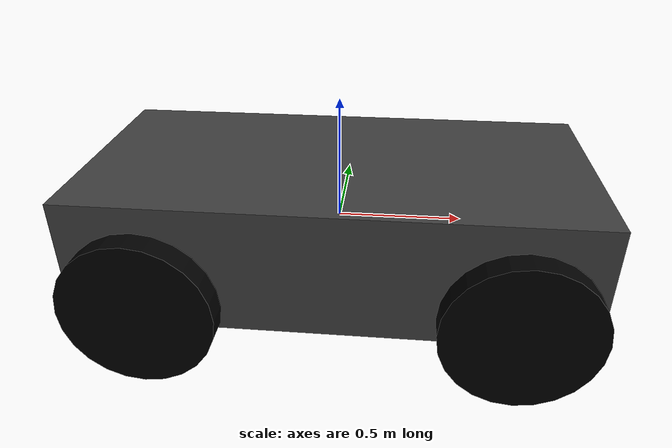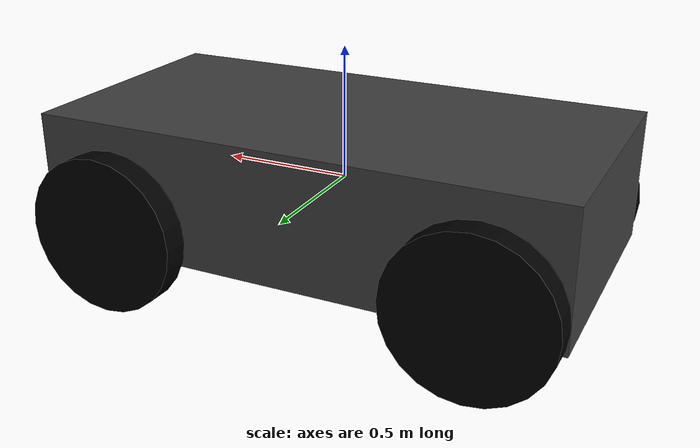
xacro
<?xml version="1.0"?>
<robot xmlns:xacro="http://www.ros.org/wiki/xacro"  name="robot">

    <xacro:include filename="robot_core.xacro" />
    <xacro:include filename="inertial_macros.xacro" />
    <xacro:include filename="lidar.xacro" />
    <xacro:include filename="ros2_control.xacro" />

</robot>

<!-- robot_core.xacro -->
<robot name="my_bot" xmlns:xacro="http://www.ros.org/wiki/xacro">

  <!-- Arguments -->
  <!-- todo -->
  <xacro:arg name="body_length" default="2.0" />
  <xacro:arg name="body_width" default="1.0" />
  <xacro:arg name="body_height" default="0.5" />
  <xacro:arg name="body_density" default="1000.0" />
  <xacro:arg name="wheel_radius" default="0.3" />
  <xacro:arg name="wheel_width" default="0.1" />
  <xacro:arg name="wheel_density" default="1000.0" />
  <xacro:arg name="max_steering_angle" default="0.6108" />
  <xacro:arg name="max_steering_angular_velocity" default="1.570796" />
  <xacro:arg name="max_steering_effort" default="1.0" />
  <xacro:arg name="max_velocity" default="1.0" />
  <xacro:arg name="max_effort" default="10.0" />

  <!-- Mathematical Constants -->
  <xacro:property name="PI" value="3.14159265"/>

  <!-- Vehicle Properties -->
  <xacro:property name="body_length" value="$(arg body_length)"/>
  <xacro:property name="body_width" value="$(arg body_width)"/>
  <xacro:property name="body_height" value="$(arg body_height)"/>
  <xacro:property name="body_density" value="$(arg body_density)"/>
  <xacro:property name="wheel_radius" value="$(arg wheel_radius)"/>
  <xacro:property name="wheel_width" value="$(arg wheel_width)"/>
  <xacro:property name="wheel_density" value="$(arg wheel_density)"/>
  <xacro:property name="max_steering_angle" value="$(arg max_steering_angle)"/>
  <xacro:property name="max_steering_angular_velocity" value="$(arg max_steering_angular_velocity)"/>
  <xacro:property name="max_steering_effort" value="$(arg max_steering_effort)"/>
  <xacro:property name="max_velocity" value="$(arg max_velocity)"/>
  <xacro:property name="max_effort" value="$(arg max_effort)"/>

  <xacro:property name="body_mass" value="${body_density * body_length * body_height * body_width}"/>
  <xacro:property name="body_inertia_x" value="${1.0/12.0 * body_mass * (body_height*body_height + body_width*body_width)}"/>
  <xacro:property name="body_inertia_y" value="${1.0/12.0 * body_mass * (body_length*body_length + body_height*body_height)}"/>
  <xacro:property name="body_inertia_z" value="${1.0/12.0 * body_mass * (body_length*body_length + body_width*body_width)}"/>
  <xacro:property name="wheel_separation" value="${body_width + wheel_width}"/>
  <xacro:property name="wheel_offset" value="${body_length/2 - wheel_radius}"/>
  <xacro:property name="wheel_mass" value="${wheel_density * PI * wheel_radius * wheel_radius * wheel_width}"/>
  <xacro:property name="wheel_inertia_x" value="${1.0/12.0 * wheel_mass * (3*wheel_radius*wheel_radius + wheel_width*wheel_width)}"/>
  <xacro:property name="wheel_inertia_y" value="${1.0/12.0 * wheel_mass * (3*wheel_radius*wheel_radius + wheel_width*wheel_width)}"/>
  <xacro:property name="wheel_inertia_z" value="${1.0/2.0 * wheel_mass * wheel_radius * wheel_radius}"/>
  <xacro:property name="max_wheel_angular_velocity" value="${max_velocity / wheel_radius}"/>

  <!-- Links -->

  <!-- dummy root link -->
  <link name="dummy"/>

  <!-- Body Link -->
  <link name="body_link">
    <visual>
      <origin xyz="0.0 0.0 0.0" rpy="0.0 0.0 0.0"/>
      <geometry>
        <box size="${body_length} ${body_width} ${body_height}"/>
      </geometry>
      <material name="body_material">
        <color rgba="0.25 0.25 0.25 1.0"/>
      </material>
    </visual>
    <collision>
      <origin xyz="0.0 0.0 0.0" rpy="0.0 0.0 0.0"/>
      <geometry>
        <box size="${body_length} ${body_width} ${body_height}"/>
      </geometry>
    </collision>
    <inertial>
      <mass value="${body_mass}"/>
      <inertia ixx="${body_inertia_x}" ixy="0.0" ixz="0.0" iyy="${body_inertia_y}" iyz="0" izz="${body_inertia_z}"/>
      <origin xyz="0 0 0" rpy="0 0 0"/>
    </inertial>
  </link>

  <joint name="dummy_to_base_link=" type="fixed">
    <parent link="dummy"/>
     <child link="body_link"/>
  </joint>

  <!-- Front Left Wheel -->
  <link name="front_left_wheel_link">
    <visual>
      <origin xyz="0.0 0.0 0.0" rpy="1.570795 0.0 0.0"/>
      <geometry>
        <cylinder radius="${wheel_radius}" length="${wheel_width}"/>
      </geometry>
      <material name="wheel_material">
        <color rgba="0.0 0.0 0.0 1.0"/>
      </material>
    </visual>
    <collision>
      <origin xyz="0.0 0.0 0.0" rpy="1.570795 0.0 0.0"/>
      <geometry>
        <cylinder radius="${wheel_radius}" length="${wheel_width}"/>
      </geometry>
    </collision>
    <inertial>
      <mass value="${wheel_mass}"/>
      <inertia ixx="${wheel_inertia_x}" ixy="0.0" ixz="0.0" iyy="${wheel_inertia_y}" iyz="0" izz="${wheel_inertia_z}"/>
      <origin xyz="0.0 0.0 0.0" rpy="1.570795 0.0 0.0"/>
    </inertial>
  </link>

    <!-- Front Left Wheel Steering -->
  <link name="front_left_steering_link">
    <visual>
      <origin xyz="0.0 0.0 0.0" rpy="1.570795 0.0 0.0"/>
      <geometry>
        <cylinder length="0.001" radius="0.01"/>
      </geometry>
      <material name="wheel_material">
        <color rgba="0.0 0.0 0.0 1.0"/>
      </material>
    </visual>
    <collision>
      <origin xyz="0.0 0.0 0.0" rpy="1.570795 0.0 0.0"/>
      <geometry>
        <cylinder length="0.001" radius="0.01"/>
      </geometry>
    </collision>
    <inertial>
      <mass value="0.01"/>
      <inertia ixx="0.0" ixy="0.0" ixz="0.0" iyy="0.0" iyz="0.0" izz="0.0"/>
      <origin xyz="0.0 0.0 0.0" rpy="1.570795 0.0 0.0"/>
    </inertial>
  </link>

  <!-- Front Right Wheel -->
  <link name="front_right_wheel_link">
    <visual>
      <origin xyz="0.0 0.0 0.0" rpy="1.570795 0.0 0.0"/>
      <geometry>
        <cylinder radius="${wheel_radius}" length="${wheel_width}"/>
      </geometry>
      <material name="wheel_material">
        <color rgba="0.0 0.0 0.0 1.0"/>
      </material>
    </visual>
    <collision>
      <origin xyz="0.0 0.0 0.0" rpy="1.570795 0.0 0.0"/>
      <geometry>
        <cylinder radius="${wheel_radius}" length="${wheel_width}"/>
      </geometry>
    </collision>
    <inertial>
      <mass value="${wheel_mass}"/>
      <inertia ixx="${wheel_inertia_x}" ixy="0.0" ixz="0.0" iyy="${wheel_inertia_y}" iyz="0" izz="${wheel_inertia_z}"/>
      <origin xyz="0.0 0.0 0.0" rpy="1.570795 0.0 0.0"/>
    </inertial>
  </link>

  <!-- Front Right Wheel Steering -->
  <link name="front_right_steering_link">
    <visual>
      <origin xyz="0.0 0.0 0.0" rpy="1.570795 0.0 0.0"/>
      <geometry>
        <cylinder length="0.001" radius="0.01"/>
      </geometry>
      <material name="wheel_material">
        <color rgba="0.0 0.0 0.0 1.0"/>
      </material>
    </visual>
    <collision>
      <origin xyz="0.0 0.0 0.0" rpy="1.570795 0.0 0.0"/>
      <geometry>
        <cylinder length="0.001" radius="0.01"/>
      </geometry>
    </collision>
    <inertial>
      <mass value="0.01"/>
      <inertia ixx="0.0" ixy="0.0" ixz="0.0" iyy="0.0" iyz="0.0" izz="0.0"/>
      <origin xyz="0.0 0.0 0.0" rpy="1.570795 0.0 0.0"/>
    </inertial>
  </link>

  <!-- Rear Left Wheel -->
  <link name="rear_left_wheel_link">
    <visual>
      <origin xyz="0.0 0.0 0.0" rpy="1.570795 0.0 0.0"/>
      <geometry>
        <cylinder radius="${wheel_radius}" length="${wheel_width}"/>
      </geometry>
      <material name="wheel_material">
        <color rgba="0.0 0.0 0.0 1.0"/>
      </material>
    </visual>
    <collision>
      <origin xyz="0.0 0.0 0.0" rpy="1.570795 0.0 0.0"/>
      <geometry>
        <cylinder radius="${wheel_radius}" length="${wheel_width}"/>
      </geometry>
    </collision>
    <inertial>
      <mass value="2"/>
      <inertia ixx="${wheel_inertia_x}" ixy="0.0" ixz="0.0" iyy="${wheel_inertia_y}" iyz="0" izz="${wheel_inertia_z}"/>
      <origin xyz="0.0 0.0 0.0" rpy="1.570795 0.0 0.0"/>
    </inertial>
  </link>

  <!-- Rear Right Wheel -->
  <link name="rear_right_wheel_link">
    <visual>
      <origin xyz="0.0 0.0 0.0" rpy="1.570795 0.0 0.0"/>
      <geometry>
        <cylinder radius="${wheel_radius}" length="${wheel_width}"/>
      </geometry>
      <material name="wheel_material">
        <color rgba="0.0 0.0 0.0 1.0"/>
      </material>
    </visual>
    <collision>
      <origin xyz="0.0 0.0 0.0" rpy="1.570795 0.0 0.0"/>
      <geometry>
        <cylinder radius="${wheel_radius}" length="${wheel_width}"/>
      </geometry>
    </collision>
    <inertial>
      <mass value="2"/>
      <inertia ixx="${wheel_inertia_x}" ixy="0.0" ixz="0.0" iyy="${wheel_inertia_y}" iyz="0" izz="${wheel_inertia_z}"/>
      <origin xyz="0.0 0.0 0.0" rpy="1.570795 0.0 0.0"/>
    </inertial>
  </link>

  <!-- Joints -->

  <!-- Front Left Steering Joint -->
  <joint name="front_left_steering_joint" type="revolute">
    <origin xyz="${wheel_offset} ${wheel_separation/2} -${wheel_radius/2}" rpy="0 0 0"/>
    <parent link="body_link"/>
    <child link="front_left_steering_link"/>
    <axis xyz="0 0 1"/>
    <limit effort="${max_steering_effort}" lower="${-max_steering_angle}" upper="${max_steering_angle}" velocity="${max_steering_angular_velocity}"/>
    <dynamics damping="0.1" friction="0.1"/>
  </joint>

  <!-- Front Left Wheel Joint -->
  <joint name="front_left_wheel_joint" type="continuous">
    <origin xyz="0 0 0" rpy="0 0 0"/>
    <parent link="front_left_steering_link"/>
    <child link="front_left_wheel_link"/>
    <axis xyz="0 1 0"/>
    <limit effort="${max_effort}" velocity="${max_wheel_angular_velocity}"/>
    <dynamics damping="0.1" friction="0.1"/>
  </joint>

  <!-- Front Right Steering Joint -->
  <joint name="front_right_steering_joint" type="revolute">
    <origin xyz="${wheel_offset} ${-wheel_separation/2} -${wheel_radius/2}" rpy="0 0 0"/>
    <parent link="body_link"/>
    <child link="front_right_steering_link"/>
    <axis xyz="0 0 1"/>
    <limit effort="${max_steering_effort}" lower="${-max_steering_angle}" upper="${max_steering_angle}" velocity="${max_steering_angular_velocity}"/>
    <dynamics damping="0.1" friction="0.1"/>
  </joint>

  <!-- Front Right Wheel Joint -->
  <joint name="front_right_wheel_joint" type="continuous">
    <origin xyz="0 0 0" rpy="0 0 0"/>
    <parent link="front_right_steering_link"/>
    <child link="front_right_wheel_link"/>
    <axis xyz="0 1 0"/>
    <limit effort="${max_effort}" velocity="${max_wheel_angular_velocity}"/>
    <dynamics damping="0.1" friction="0.1"/>
  </joint>

  <!-- Rear Left Wheel Joint -->
  <joint name="rear_left_wheel_joint" type="continuous">
    <origin xyz="-${wheel_offset} ${wheel_separation/2} -${wheel_radius/2}" rpy="0 0 0"/>
    <parent link="body_link"/>
    <child link="rear_left_wheel_link"/>
    <axis xyz="0 1 0"/>
    <limit effort="${max_effort}" velocity="${max_wheel_angular_velocity}"/>
    <dynamics damping="0.1" friction="0.1"/>
  </joint>

  <!-- Rear Right Wheel Joint -->
  <joint name="rear_right_wheel_joint" type="continuous">
    <origin xyz="-${wheel_offset} ${-wheel_separation/2} -${wheel_radius/2}" rpy="0 0 0"/>
    <parent link="body_link"/>
    <child link="rear_right_wheel_link"/>
    <axis xyz="0 1 0"/>
    <limit effort="${max_effort}" velocity="${max_wheel_angular_velocity}"/>
    <dynamics damping="0.1" friction="0.1"/>
  </joint>

</robot>

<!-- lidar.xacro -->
<robot xmlns:xacro="http://www.ros.org/wiki/xacro">

    <joint name="laser_joint" type="fixed">
        <parent link="body_link" />
        <child link="laser_frame" />
        <origin xyz="0.122 0 0.212" rpy="0 0 0" />
    </joint>

    <link name="laser_frame">
        <visual>
            <geometry>
                <cylinder radius="0.05" length="0.04" />
            </geometry>
            <material name="black" />
        </visual>
        <visual>
            <origin xyz="0 0 -0.05" />
            <geometry>
                <cylinder radius="0.01" length="0.1" />
            </geometry>
            <material name="black" />
        </visual>
        <collision>
            <geometry>
                <cylinder radius="0.05" length="0.04" />
            </geometry>
        </collision>
        <xacro:inertial_cylinder mass="0.1" length="0.04" radius="0.05">
            <origin xyz="0 0 0" rpy="0 0 0" />
        </xacro:inertial_cylinder>
    </link>

    <gazebo reference="laser_frame">
        <material>Gazebo/Black</material>

        <sensor name="hls_lfcd_lds" type="gpu_lidar">
            <always_on>true</always_on>
            <visualize>true</visualize>
            <pose>-0.064 0 0.121 0 0 0</pose>
            <update_rate>5</update_rate>
            <topic>scan</topic>
            <gz_frame_id>laser_frame</gz_frame_id>
            <lidar>
                <scan>
                    <horizontal>
                        <samples>360</samples>
                        <min_angle>-3.14</min_angle>
                        <max_angle>3.14</max_angle>
                    </horizontal>
                </scan>
                <range>
                    <min>0.3</min>
                    <max>12</max>
                </range>
            </lidar>
        </sensor>
    </gazebo>

</robot>
